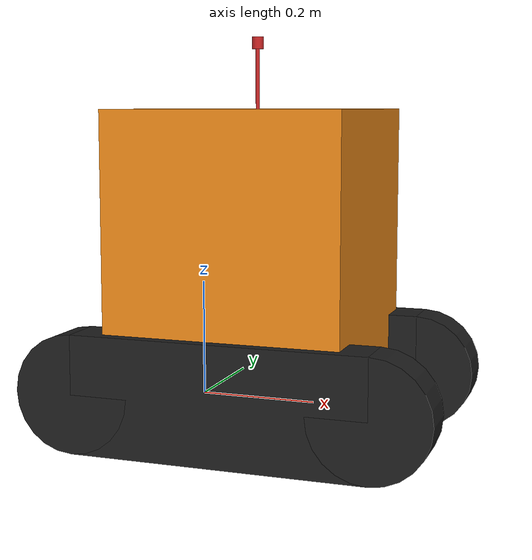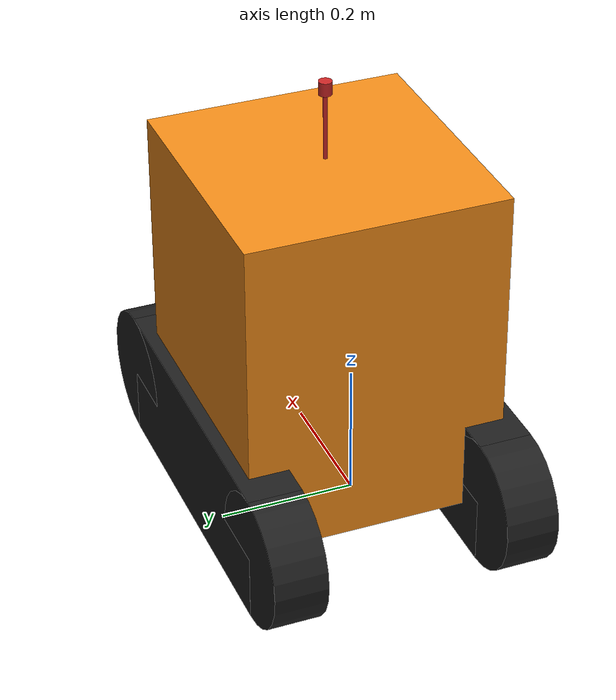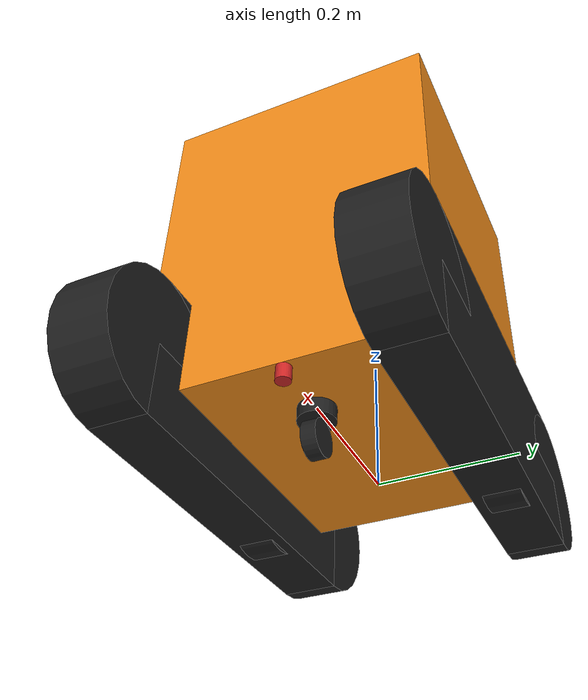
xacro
<?xml version="1.0"?>
<robot
  name="xju" xmlns:xacro="http://ros.org/wiki/xacro">
  <xacro:include filename="$(find xju_simu)/urdf/xju_model.gazebo.xacro"/>
  <xacro:include filename="$(find xju_simu)/urdf/common_properties.xacro"/>

  <!-- Body -->
  <link
    name="base_link">
    <inertial>
      <origin
        xyz="0 0 0"
        rpy="0 0 0" />
      <mass
        value="5" />
      <inertia
        ixx="0.13"
        ixy="0.0"
        ixz="0.0"
        iyy="0.21"
        iyz="0.0"
        izz="0.13" />
    </inertial>
    <visual>
      <origin
        xyz="0.1 0 0.25"
        rpy="0 0 0" />
      <geometry>
        <box size="0.4 0.39 0.5" />
      </geometry>
      <material name="orange" />
    </visual>
    <collision>
      <origin
        xyz="0.1 0 0.25"
        rpy="0 0 0" />
      <geometry>
        <box size="0.4 0.3 0.5" />
      </geometry>
    </collision>
  </link>

<!-- 改进版左侧履带（长方体+两端圆柱圆角） -->
<link name="left_track_link">
  <!-- 履带主体（长方体） -->
  <visual>
    <origin xyz="0 0 0" rpy="0 0 0"/>
    <geometry>
      <box size="0.5 0.08 0.2"/>
    </geometry>
    <material name="black"/>
  </visual>

  <!-- 前端圆角（圆柱） -->
  <visual>
    <origin xyz="0.25 0 0" rpy="1.57 0 0"/> <!-- 圆柱沿Y轴旋转90度 -->
    <geometry>
      <cylinder radius="0.1" length="0.08"/> <!-- 半径=高度/2，长度=履带厚度 -->
    </geometry>
    <material name="black"/>
  </visual>

  <!-- 后端圆角（圆柱） -->
  <visual>
    <origin xyz="-0.25 0 0" rpy="1.57 0 0"/>
    <geometry>
      <cylinder radius="0.1" length="0.08"/>
    </geometry>
    <material name="black"/>
  </visual>
</link>

<joint name="left_track_joint" type="fixed">
  <origin xyz="0.1 0.175 0.035" rpy="0 0 0"/>
  <parent link="base_link"/>
  <child link="left_track_link"/>
</joint>

<!-- 改进版右侧履带（镜像对称） -->
<link name="right_track_link">
  <!-- 履带主体 -->
  <visual>
    <origin xyz="0 0 0" rpy="0 0 0"/>
    <geometry>
      <box size="0.5 0.08 0.2"/>
    </geometry>
    <material name="black"/>
  </visual>

  <!-- 前端圆角 -->
  <visual>
    <origin xyz="0.25 0 0" rpy="1.57 0 0"/>
    <geometry>
      <cylinder radius="0.1" length="0.08"/>
    </geometry>
    <material name="black"/>
  </visual>

  <!-- 后端圆角 -->
  <visual>
    <origin xyz="-0.25 0 0" rpy="1.57 0 0"/>
    <geometry>
      <cylinder radius="0.1" length="0.08"/>
    </geometry>
    <material name="black"/>
  </visual>
</link>

<joint name="right_track_joint" type="fixed">
  <origin xyz="0.1 -0.175 0.035" rpy="0 0 0"/> <!-- 保持你的原始位置 -->
  <parent link="base_link"/>
  <child link="right_track_link"/>
</joint>

  <!-- Wheel -->
  <link
    name="universal_wheel_link">
    <inertial>
      <origin
        xyz="0 0 0"
        rpy="0 0 0" />
      <mass
        value="0.5" />
      <inertia
        ixx="9.4792E-5"
        ixy="0"
        ixz="0"
        iyy="1.5625E-4"
        iyz="0"
        izz="9.4792E-5" />
    </inertial>
    <visual>
      <origin
        xyz="0 0 0"
        rpy="0 0 0" />
      <geometry>
        <cylinder length="0.02" radius="0.025" />
      </geometry>
      <material name="black" />
    </visual>
    <collision>
      <origin
        xyz="0 0 0"
        rpy="0 0 0" />
      <geometry>
        <cylinder length="0.02" radius="0.025" />
      </geometry>
    </collision>
  </link>
  <joint
    name="joint_uw"
    type="continuous">
    <origin
      xyz="0.2 0 -0.01"
      rpy="0 0 0" />
    <parent
      link="base_link" />
    <child
      link="universal_wheel_link" />
    <axis
      xyz="0 0 1" />
    <safety_controller
      k_velocity="0" />
  </joint>

  <link
    name="front_wheel_link">
    <inertial>
      <origin
        xyz="0 0 0"
        rpy="0 0 0" />
      <mass
        value="0.5" />
      <inertia
        ixx="9.4792E-5"
        ixy="0"
        ixz="0"
        iyy="1.5625E-4"
        iyz="0"
        izz="9.4792E-5" />
    </inertial>
    <visual>
      <origin
        xyz="0 0 0"
        rpy="1.57 0 0" />
      <geometry>
        <cylinder length="0.02" radius="0.025" />
      </geometry>
      <material name="black" />
    </visual>
    <collision>
      <origin
        xyz="0 0 0"
        rpy="1.57 0 0" />
      <geometry>
        <cylinder length="0.02" radius="0.025" />
      </geometry>
    </collision>
  </link>
  <joint
    name="joint_fw"
    type="continuous">
    <origin
      xyz="0 0 -0.035"
      rpy="0 0 0" />
    <parent
      link="universal_wheel_link" />
    <child
      link="front_wheel_link" />
    <axis
      xyz="0 1 0" />
    <safety_controller
      k_velocity="0" />
  </joint>

  <link
    name="left_wheel_link">
    <inertial>
      <origin
        xyz="0 0 0"
        rpy="0 0 0" />
      <mass
        value="2" />
      <inertia
        ixx="0.002867"
        ixy="0"
        ixz="0"
        iyy="0.0049"
        iyz="0"
        izz="0.002867" />
    </inertial>
    <visual>
      <origin
        xyz="0 0 0"
        rpy="1.57 0 0" />
      <geometry>
        <cylinder length="0.05" radius="0.07" />
      </geometry>
      <material name="black" />
    </visual>
    <collision>
      <origin
        xyz="0 0 0"
        rpy="1.57 0 0" />
      <geometry>
        <cylinder length="0.05" radius="0.07" />
      </geometry>
    </collision>
  </link>
  <joint
    name="joint_lw"
    type="continuous">
    <origin
      xyz="0 0.175 0"
      rpy="0 0 0" />
    <parent
      link="base_link" />
    <child
      link="left_wheel_link" />
    <axis
      xyz="0 1 0" />
    <safety_controller
      k_velocity="0" />
  </joint>

  <link
    name="right_wheel_link">
    <inertial>
      <origin
        xyz="0 0 0"
        rpy="0 0 0" />
      <mass
        value="2" />
      <inertia
        ixx="0.002867"
        ixy="0"
        ixz="0"
        iyy="0.0049"
        iyz="0"
        izz="0.002867" />
    </inertial>
    <visual>
      <origin
        xyz="0 0 0"
        rpy="1.57 0 0" />
      <geometry>
        <cylinder length="0.05" radius="0.07" />
      </geometry>
      <material name="black" />
    </visual>
    <collision>
      <origin
        xyz="0 0 0"
        rpy="1.57 0 0" />
      <geometry>
        <cylinder length="0.05" radius="0.07" />
      </geometry>
    </collision>
  </link>
  <joint
    name="joint_rw"
    type="continuous">
    <origin
      xyz="0 -0.175 0"
      rpy="0 0 0" />
    <parent
      link="base_link" />
    <child
      link="right_wheel_link" />
    <axis
      xyz="0 1 0" />
    <safety_controller
      k_velocity="0" />
  </joint>

  <!-- Imu -->
  <link name="imu_link"/>
  <joint
    name="joint_imu"
    type="fixed">
    <origin
      xyz="0 0 0"
      rpy="0 0 0" />
    <parent
      link="base_link" />
    <child
      link="imu_link" />
    <axis
      xyz="0 0 0" />
    <safety_controller
      k_velocity="0" />
  </joint>

  <!-- Lidar -->
  <link name="laser_link">
    <visual>
      <origin
        xyz="0 0 0"
        rpy="0 0 0" />
      <geometry>
        <cylinder length="0.02" radius="0.01" />
      </geometry>
      <material name="red" />
    </visual>
  </link>
  <joint
    name="joint_ladar"
    type="fixed">
    <origin
      xyz="0.29 0 -0.01"
      rpy="0 0 0" />
    <parent
      link="base_link" />
    <child
      link="laser_link" />
    <axis
      xyz="0 0 0" />
    <safety_controller
      k_velocity="0" />
  </joint>

  <link name="top_laser_link">
    <visual>
      <origin
        xyz="0 0 0"
        rpy="0 0 0" />
      <geometry>
        <cylinder length="0.02" radius="0.01" />
      </geometry>
      <material name="red" />
    </visual>
    <visual>
      <origin
        xyz="0 0 -0.06"
        rpy="0 0 0" />
      <geometry>
        <cylinder length="0.1" radius="0.0033" />
      </geometry>
      <material name="red" />
    </visual>
  </link>
  <joint
    name="joint_top_ladar"
    type="fixed">
    <origin
      xyz="0.1 0 0.61"
      rpy="0 0 0" />
    <parent
      link="base_link" />
    <child
      link="top_laser_link" />
    <axis
      xyz="0 0 0" />
    <safety_controller
      k_velocity="0" />
  </joint>

  <!-- Camera -->
  <link name="camera_front_base"/>
  <joint name="camera_front_base_joint" type="fixed">
    <axis xyz="0 0 0" />
    <origin xyz="0.305 0 0.495" rpy="0 0.174 0"/>
    <parent link="base_link"/>
    <child link="camera_front_base"/>
  </joint>
  <link name="camera_front_link" />
  <joint name="camera_front_joint" type="fixed">
    <axis xyz="0 0 0" />
    <origin xyz="0 0 0" rpy="-1.57 0 -1.57"/>
    <parent link="camera_front_base"/>
    <child link="camera_front_link"/>
  </joint>

  <!-- Ultrasonic -->
    <link name="ultra_left_front_link">
      <visual>
        <origin
          xyz="0 0 0"
          rpy="0 0 0" />
        <geometry>
          <box size="0.01 0.01 0.01" />
        </geometry>
        <material name="red" />
      </visual>
    </link>
    <joint name="ultra_left_front_joint" type="fixed">
      <axis xyz="0 0 0" />
      <origin xyz="0.3 0.195 0.1" rpy="0 0 0.7854"/>
      <parent link="base_link"/>
      <child link="ultra_left_front_link"/>
    </joint>

    <link name="ultra_left_back_link">
      <visual>
        <origin
          xyz="0 0 0"
          rpy="0 0 0" />
        <geometry>
          <box size="0.01 0.01 0.01" />
        </geometry>
        <material name="red" />
      </visual>
    </link>
    <joint name="ultra_left_back_joint" type="fixed">
      <axis xyz="0 0 0" />
      <origin xyz="-0.1 0.195 0.1" rpy="0 0 2.3562"/>
      <parent link="base_link"/>
      <child link="ultra_left_back_link"/>
    </joint>

    <link name="ultra_right_back_link">
      <visual>
        <origin
          xyz="0 0 0"
          rpy="0 0 0" />
        <geometry>
          <box size="0.01 0.01 0.01" />
        </geometry>
        <material name="red" />
      </visual>
    </link>
    <joint name="ultra_right_back_joint" type="fixed">
      <axis xyz="0 0 0" />
      <origin xyz="-0.1 -0.195 0.1" rpy="0 0 -2.3562"/>
      <parent link="base_link"/>
      <child link="ultra_right_back_link"/>
    </joint>

    <link name="ultra_right_front_link">
      <visual>
        <origin
          xyz="0 0 0"
          rpy="0 0 0" />
        <geometry>
          <box size="0.01 0.01 0.01" />
        </geometry>
        <material name="red" />
      </visual>
    </link>
    <joint name="ultra_right_front_joint" type="fixed">
      <axis xyz="0 0 0" />
      <origin xyz="0.3 -0.195 0.1" rpy="0 0 -0.7854"/>
      <parent link="base_link"/>
      <child link="ultra_right_front_link"/>
    </joint>
</robot>
